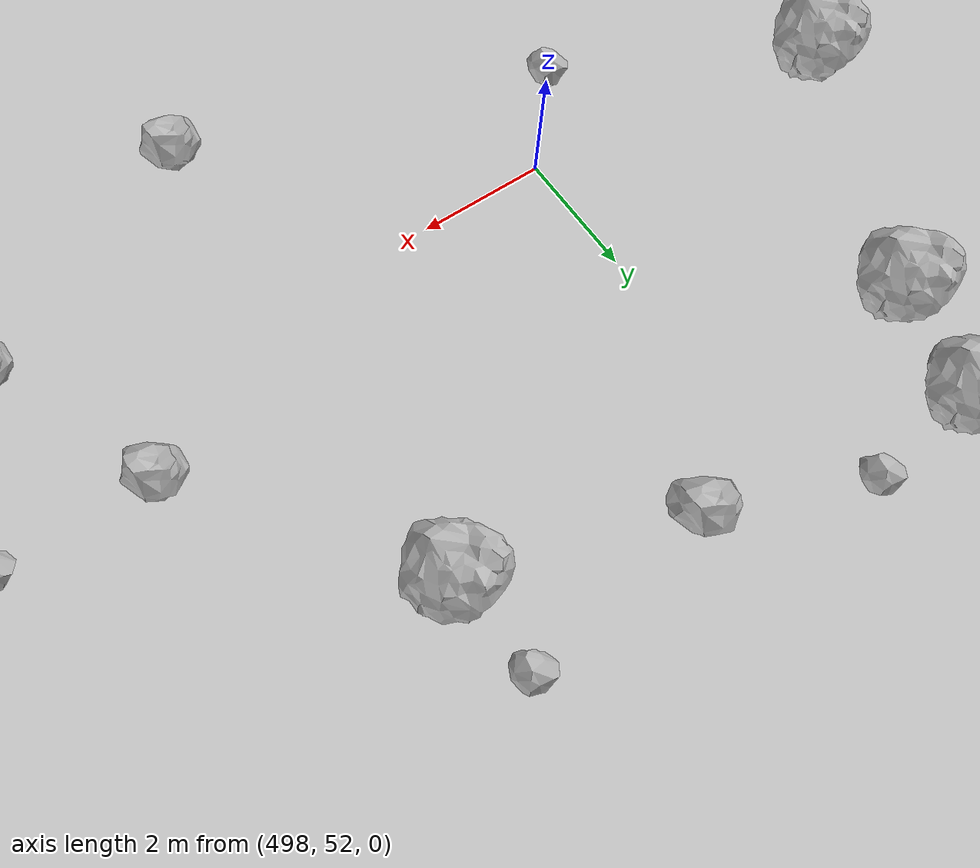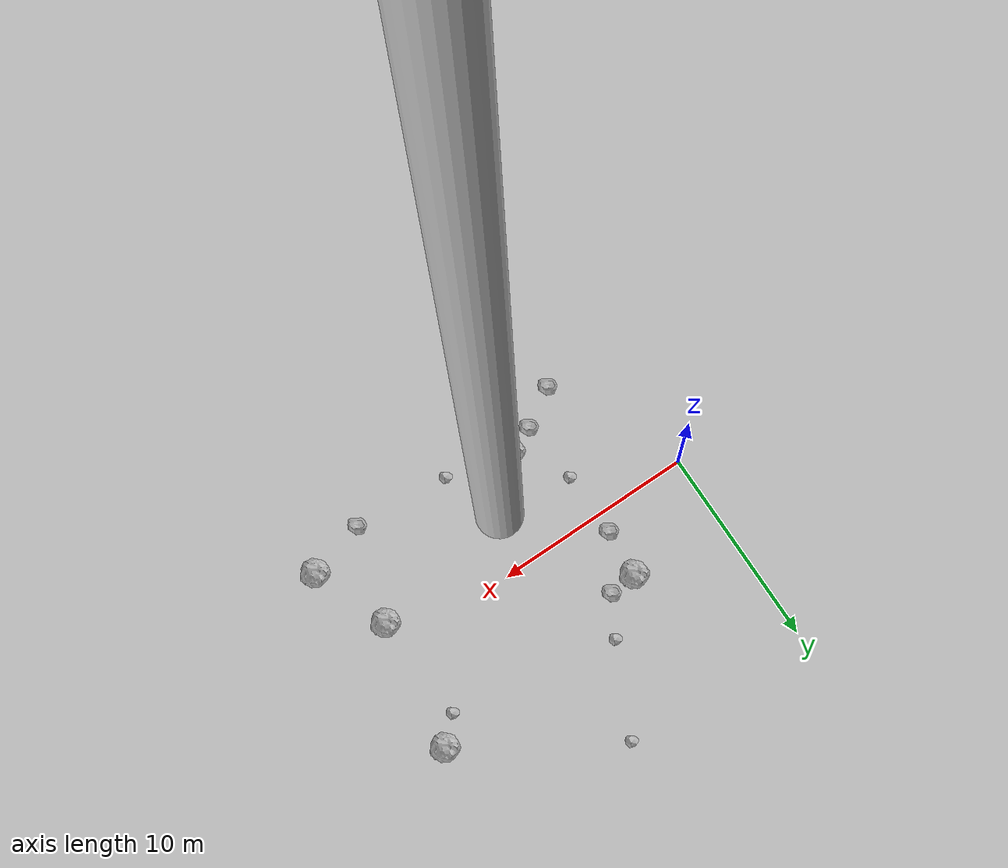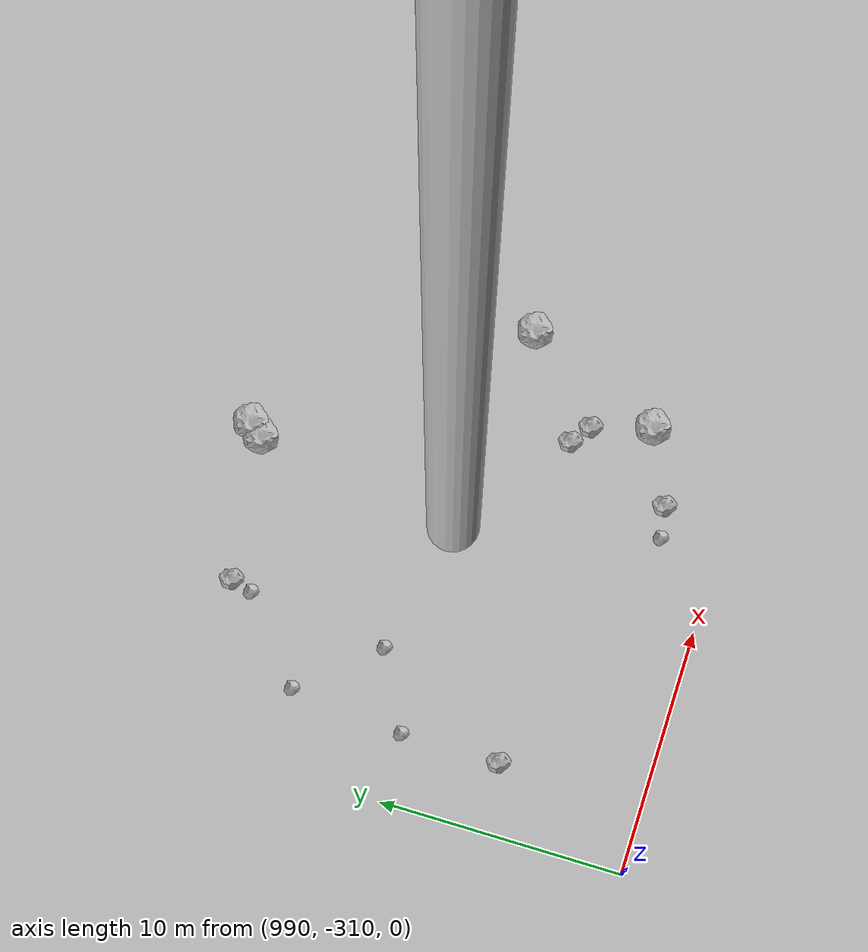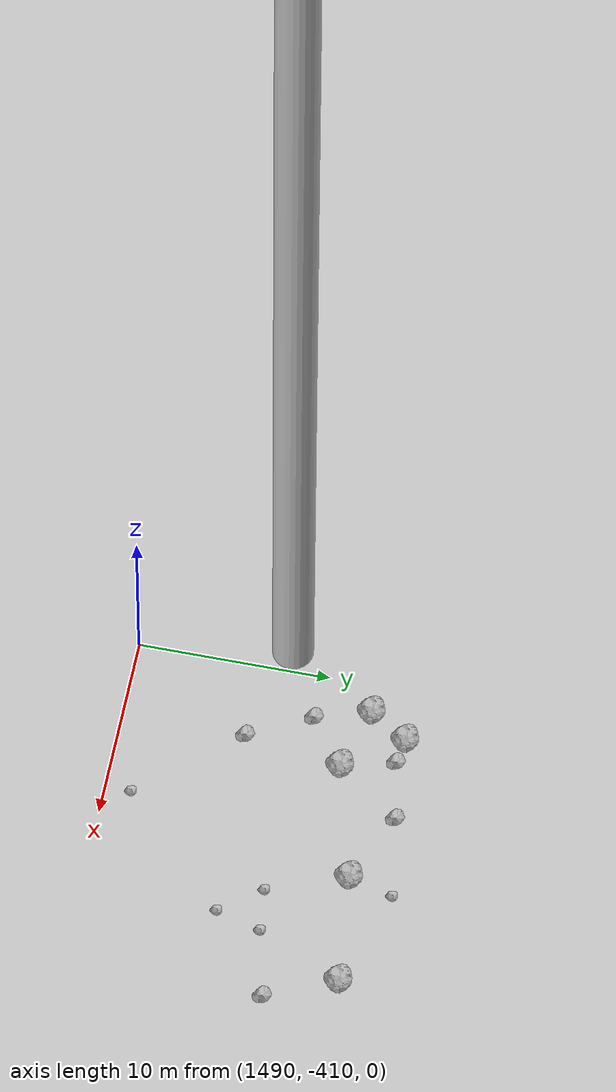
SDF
<?xml version="1.0" ?>
<sdf version="1.6">
  <world name="default">

    <include>
      <uri>model://custom_ground</uri>
    </include>

    <include>
      <uri>model://sun</uri>
    </include>

    <spherical_coordinates>
      <surface_model>EARTH_WGS84</surface_model>
      <latitude_deg>38.161479</latitude_deg>
      <longitude_deg>-122.454630</longitude_deg>
      <elevation>488.0</elevation>
      <heading_deg>90</heading_deg>
    </spherical_coordinates>

    <model name="rock1_0_0">
      <include>
        <uri>model://rock1</uri>
        <pose>16.11067296734991 -1.417759859321439 0.5 0 0 0</pose>
      </include>
    </model>
    <model name="rock1_0_1">
      <include>
        <uri>model://rock1</uri>
        <pose>17.573094741228065 -5.309311052729841 0.5 0 0 0</pose>
      </include>
    </model>
    <model name="rock1_0_2">
      <include>
        <uri>model://rock1</uri>
        <pose>17.084709788923377 5.132225780993899 0.5 0 0 0</pose>
      </include>
    </model>
    <model name="rock1_0_3">
      <include>
        <uri>model://rock1</uri>
        <pose>6.526445182104325 -4.951030588136822 0.5 0 0 0</pose>
      </include>
    </model>
    <model name="rock1_0_4">
      <include>
        <uri>model://rock1</uri>
        <pose>4.95490407489656 3.3361419802474845 0.5 0 0 0</pose>
      </include>
    </model>
    <model name="rock2_0_0">
      <include>
        <uri>model://rock2</uri>
        <pose>14.608103411631088 -6.104829642531417 0.3 0 0 0</pose>
      </include>
    </model>
    <model name="rock2_0_1">
      <include>
        <uri>model://rock2</uri>
        <pose>6.309081604555756 3.470677605502617 0.3 0 0 0</pose>
      </include>
    </model>
    <model name="rock2_0_2">
      <include>
        <uri>model://rock2</uri>
        <pose>5.0611662440257055 -5.446208547516999 0.3 0 0 0</pose>
      </include>
    </model>
    <model name="rock2_0_3">
      <include>
        <uri>model://rock2</uri>
        <pose>4.720879948601395 0.9329874076243811 0.3 0 0 0</pose>
      </include>
    </model>
    <model name="rock2_0_4">
      <include>
        <uri>model://rock2</uri>
        <pose>3.182519753448836 -6.606809462385199 0.3 0 0 0</pose>
      </include>
    </model>
    <model name="rock3_0_0">
      <include>
        <uri>model://rock3</uri>
        <pose>9.522169102477203 9.842071942240864 0.2 0 0 0</pose>
      </include>
    </model>
    <model name="rock3_0_1">
      <include>
        <uri>model://rock3</uri>
        <pose>15.816695114527569 3.928388204571018 0.2 0 0 0</pose>
      </include>
    </model>
    <model name="rock3_0_2">
      <include>
        <uri>model://rock3</uri>
        <pose>4.766420928119208 -2.349809745354552 0.2 0 0 0</pose>
      </include>
    </model>
    <model name="rock3_0_3">
      <include>
        <uri>model://rock3</uri>
        <pose>7.392539155644937 5.383792868687731 0.2 0 0 0</pose>
      </include>
    </model>
    <model name="rock3_0_4">
      <include>
        <uri>model://rock3</uri>
        <pose>9.73816994650263 -5.720402464593821 0.2 0 0 0</pose>
      </include>
    </model>
    <model name="rock1_1_0">
      <include>
        <uri>model://rock1</uri>
        <pose>202.37423813776172 103.05550551148089 0.5 0 0 0</pose>
      </include>
    </model>
    <model name="rock1_1_1">
      <include>
        <uri>model://rock1</uri>
        <pose>202.8139282576461 98.11651509972569 0.5 0 0 0</pose>
      </include>
    </model>
    <model name="rock1_1_2">
      <include>
        <uri>model://rock1</uri>
        <pose>202.02428884600903 101.14777040268251 0.5 0 0 0</pose>
      </include>
    </model>
    <model name="rock1_1_3">
      <include>
        <uri>model://rock1</uri>
        <pose>196.45945049912171 99.10113379794333 0.5 0 0 0</pose>
      </include>
    </model>
    <model name="rock1_1_4">
      <include>
        <uri>model://rock1</uri>
        <pose>191.51707272965308 100.37573862846283 0.5 0 0 0</pose>
      </include>
    </model>
    <model name="rock2_1_0">
      <include>
        <uri>model://rock2</uri>
        <pose>198.05641816168946 105.02414845667118 0.3 0 0 0</pose>
      </include>
    </model>
    <model name="rock2_1_1">
      <include>
        <uri>model://rock2</uri>
        <pose>203.08495364095077 99.14028889384109 0.3 0 0 0</pose>
      </include>
    </model>
    <model name="rock2_1_2">
      <include>
        <uri>model://rock2</uri>
        <pose>207.8812219310394 102.54781171653136 0.3 0 0 0</pose>
      </include>
    </model>
    <model name="rock2_1_3">
      <include>
        <uri>model://rock2</uri>
        <pose>194.94390536860263 107.69989286360817 0.3 0 0 0</pose>
      </include>
    </model>
    <model name="rock2_1_4">
      <include>
        <uri>model://rock2</uri>
        <pose>208.15074642648452 94.36750961421751 0.3 0 0 0</pose>
      </include>
    </model>
    <model name="rock3_1_0">
      <include>
        <uri>model://rock3</uri>
        <pose>204.58931865379935 101.5510346486528 0.2 0 0 0</pose>
      </include>
    </model>
    <model name="rock3_1_1">
      <include>
        <uri>model://rock3</uri>
        <pose>204.9775194856429 93.74711645949701 0.2 0 0 0</pose>
      </include>
    </model>
    <model name="rock3_1_2">
      <include>
        <uri>model://rock3</uri>
        <pose>196.90558078122464 99.03159417934651 0.2 0 0 0</pose>
      </include>
    </model>
    <model name="rock3_1_3">
      <include>
        <uri>model://rock3</uri>
        <pose>201.42730262775476 95.36322084439111 0.2 0 0 0</pose>
      </include>
    </model>
    <model name="rock3_1_4">
      <include>
        <uri>model://rock3</uri>
        <pose>192.0619908308738 103.08615246764302 0.2 0 0 0</pose>
      </include>
    </model>
    <model name="rock1_2_0">
      <include>
        <uri>model://rock1</uri>
        <pose>495.00246663564127 56.65416492325478 0.5 0 0 0</pose>
      </include>
    </model>
    <model name="rock1_2_1">
      <include>
        <uri>model://rock1</uri>
        <pose>495.39148041301667 58.47335849433171 0.5 0 0 0</pose>
      </include>
    </model>
    <model name="rock1_2_2">
      <include>
        <uri>model://rock1</uri>
        <pose>502.7346451520061 56.72723952070617 0.5 0 0 0</pose>
      </include>
    </model>
    <model name="rock1_2_3">
      <include>
        <uri>model://rock1</uri>
        <pose>493.17782201393413 52.664660892771366 0.5 0 0 0</pose>
      </include>
    </model>
    <model name="rock1_2_4">
      <include>
        <uri>model://rock1</uri>
        <pose>500.41344658548957 42.335069893398455 0.5 0 0 0</pose>
      </include>
    </model>
    <model name="rock2_2_0">
      <include>
        <uri>model://rock2</uri>
        <pose>505.2326270253367 53.32777710274995 0.3 0 0 0</pose>
      </include>
    </model>
    <model name="rock2_2_1">
      <include>
        <uri>model://rock2</uri>
        <pose>502.4790055039028 48.706849764648425 0.3 0 0 0</pose>
      </include>
    </model>
    <model name="rock2_2_2">
      <include>
        <uri>model://rock2</uri>
        <pose>499.4257185708328 57.78091813554313 0.3 0 0 0</pose>
      </include>
    </model>
    <model name="rock2_2_3">
      <include>
        <uri>model://rock2</uri>
        <pose>506.4937283918982 50.57856133537959 0.3 0 0 0</pose>
      </include>
    </model>
    <model name="rock2_2_4">
      <include>
        <uri>model://rock2</uri>
        <pose>497.2353359826058 43.67341748321038 0.3 0 0 0</pose>
      </include>
    </model>
    <model name="rock3_2_0">
      <include>
        <uri>model://rock3</uri>
        <pose>507.63447696676303 53.296981828977394 0.2 0 0 0</pose>
      </include>
    </model>
    <model name="rock3_2_1">
      <include>
        <uri>model://rock3</uri>
        <pose>496.79117571804517 50.57535238431198 0.2 0 0 0</pose>
      </include>
    </model>
    <model name="rock3_2_2">
      <include>
        <uri>model://rock3</uri>
        <pose>502.5543310249435 58.280016998764495 0.2 0 0 0</pose>
      </include>
    </model>
    <model name="rock3_2_3">
      <include>
        <uri>model://rock3</uri>
        <pose>497.1170852347188 58.68586128838683 0.2 0 0 0</pose>
      </include>
    </model>
    <model name="rock3_2_4">
      <include>
        <uri>model://rock3</uri>
        <pose>490.76599029497487 52.06138423498429 0.2 0 0 0</pose>
      </include>
    </model>
    <model name="rock1_3_0">
      <include>
        <uri>model://rock1</uri>
        <pose>1003.0828121095526 -290.73824906045263 0.5 0 0 0</pose>
      </include>
    </model>
    <model name="rock1_3_1">
      <include>
        <uri>model://rock1</uri>
        <pose>1009.8003374188013 -300.52885127184436 0.5 0 0 0</pose>
      </include>
    </model>
    <model name="rock1_3_2">
      <include>
        <uri>model://rock1</uri>
        <pose>1006.2657756636082 -298.0482651418569 0.5 0 0 0</pose>
      </include>
    </model>
    <model name="rock1_3_3">
      <include>
        <uri>model://rock1</uri>
        <pose>1002.6434612845791 -291.2675814405131 0.5 0 0 0</pose>
      </include>
    </model>
    <model name="rock1_3_4">
      <include>
        <uri>model://rock1</uri>
        <pose>1007.4529597488508 -306.1164641239414 0.5 0 0 0</pose>
      </include>
    </model>
    <model name="rock2_3_0">
      <include>
        <uri>model://rock2</uri>
        <pose>1004.5533434995925 -307.43416756070405 0.3 0 0 0</pose>
      </include>
    </model>
    <model name="rock2_3_1">
      <include>
        <uri>model://rock2</uri>
        <pose>996.842495562154 -291.78003672603745 0.3 0 0 0</pose>
      </include>
    </model>
    <model name="rock2_3_2">
      <include>
        <uri>model://rock2</uri>
        <pose>1005.9397496523636 -303.1208270071467 0.3 0 0 0</pose>
      </include>
    </model>
    <model name="rock2_3_3">
      <include>
        <uri>model://rock2</uri>
        <pose>992.8832656324117 -304.02934083119277 0.3 0 0 0</pose>
      </include>
    </model>
    <model name="rock2_3_4">
      <include>
        <uri>model://rock2</uri>
        <pose>1006.7316459469237 -303.72624199393744 0.3 0 0 0</pose>
      </include>
    </model>
    <model name="rock3_3_0">
      <include>
        <uri>model://rock3</uri>
        <pose>1003.2680026610917 -307.6807720502867 0.2 0 0 0</pose>
      </include>
    </model>
    <model name="rock3_3_1">
      <include>
        <uri>model://rock3</uri>
        <pose>993.3537420688994 -295.35058403884887 0.2 0 0 0</pose>
      </include>
    </model>
    <model name="rock3_3_2">
      <include>
        <uri>model://rock3</uri>
        <pose>995.9508810714182 -298.4091103968564 0.2 0 0 0</pose>
      </include>
    </model>
    <model name="rock3_3_3">
      <include>
        <uri>model://rock3</uri>
        <pose>996.5630662882126 -292.6885648308369 0.2 0 0 0</pose>
      </include>
    </model>
    <model name="rock3_3_4">
      <include>
        <uri>model://rock3</uri>
        <pose>992.8633377464786 -300.0276933812357 0.2 0 0 0</pose>
      </include>
    </model>
    <model name="rock1_4_0">
      <include>
        <uri>model://rock1</uri>
        <pose>1493.0232925365133 -395.5209015398716 0.5 0 0 0</pose>
      </include>
    </model>
    <model name="rock1_4_1">
      <include>
        <uri>model://rock1</uri>
        <pose>1491.743642067257 -397.5176894062322 0.5 0 0 0</pose>
      </include>
    </model>
    <model name="rock1_4_2">
      <include>
        <uri>model://rock1</uri>
        <pose>1507.2014460778914 -396.1911837152859 0.5 0 0 0</pose>
      </include>
    </model>
    <model name="rock1_4_3">
      <include>
        <uri>model://rock1</uri>
        <pose>1495.1230064608214 -398.49181464896077 0.5 0 0 0</pose>
      </include>
    </model>
    <model name="rock1_4_4">
      <include>
        <uri>model://rock1</uri>
        <pose>1501.3304850282739 -396.80831175353137 0.5 0 0 0</pose>
      </include>
    </model>
    <model name="rock2_4_0">
      <include>
        <uri>model://rock2</uri>
        <pose>1497.4773318446307 -395.1384098237412 0.3 0 0 0</pose>
      </include>
    </model>
    <model name="rock2_4_1">
      <include>
        <uri>model://rock2</uri>
        <pose>1492.5169112215453 -400.325195315531 0.3 0 0 0</pose>
      </include>
    </model>
    <model name="rock2_4_2">
      <include>
        <uri>model://rock2</uri>
        <pose>1494.2665394235364 -395.71495760899955 0.3 0 0 0</pose>
      </include>
    </model>
    <model name="rock2_4_3">
      <include>
        <uri>model://rock2</uri>
        <pose>1508.6951518761277 -399.7580317256684 0.3 0 0 0</pose>
      </include>
    </model>
    <model name="rock2_4_4">
      <include>
        <uri>model://rock2</uri>
        <pose>1494.2223614781863 -403.5697488347479 0.3 0 0 0</pose>
      </include>
    </model>
    <model name="rock3_4_0">
      <include>
        <uri>model://rock3</uri>
        <pose>1505.0661373767234 -400.643946385682 0.2 0 0 0</pose>
      </include>
    </model>
    <model name="rock3_4_1">
      <include>
        <uri>model://rock3</uri>
        <pose>1504.390938557385 -403.013389093026 0.2 0 0 0</pose>
      </include>
    </model>
    <model name="rock3_4_2">
      <include>
        <uri>model://rock3</uri>
        <pose>1502.7702097140407 -400.8802015692327 0.2 0 0 0</pose>
      </include>
    </model>
    <model name="rock3_4_3">
      <include>
        <uri>model://rock3</uri>
        <pose>1501.8585259285978 -394.4904662656138 0.2 0 0 0</pose>
      </include>
    </model>
    <model name="rock3_4_4">
      <include>
        <uri>model://rock3</uri>
        <pose>1498.5543152957403 -408.6662741545277 0.2 0 0 0</pose>
      </include>
    </model>

    <model name="cylinder_1">
      <static>true</static>
      <link name="link">
        <visual name="visual">
          <geometry>
            <cylinder>
              <radius>1</radius>
              <length>500</length>
            </cylinder>
          </geometry>
        </visual>
      </link>
      <pose>10 0 270 0 0 0</pose>
    </model>

    <model name="cylinder_2">
      <static>true</static>
      <link name="link">
        <visual name="visual">
          <geometry>
            <cylinder>
              <radius>1</radius>
              <length>500</length>
            </cylinder>
          </geometry>
        </visual>
      </link>
      <pose>200 100 270 0 0 0</pose>
    </model>

    <model name="cylinder_3">
      <static>true</static>
      <link name="link">
        <visual name="visual">
          <geometry>
            <cylinder>
              <radius>1</radius>
              <length>500</length>
            </cylinder>
          </geometry>
        </visual>
      </link>
      <pose>500 50 270 0 0 0</pose>
    </model>

    <model name="cylinder_4">
      <static>true</static>
      <link name="link">
        <visual name="visual">
          <geometry>
            <cylinder>
              <radius>1</radius>
              <length>500</length>
            </cylinder>
          </geometry>
        </visual>
      </link>
      <pose>1000 -300 270 0 0 0</pose>
    </model>

    <model name="cylinder_5">
      <static>true</static>
      <link name="link">
        <visual name="visual">
          <geometry>
            <cylinder>
              <radius>1</radius>
              <length>500</length>
            </cylinder>
          </geometry>
        </visual>
      </link>
      <pose>1500 -400 270 0 0 0</pose>
    </model>

  </world>
</sdf>

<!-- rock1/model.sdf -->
<sdf version="1.6">
  <model name="rock1">
    <static>true</static> <!-- Set to true if the model should not move -->
    <pose>0 0 0 0 0 0</pose>

    <!--z offset is 0.5 for full scale-->

    <link name="link">
      <collision name="rock1_collision">
        <geometry>
          <mesh>
            <uri>model://meshes/rock1.dae</uri>
          </mesh>
        </geometry>
      </collision>
      <visual name="rock1_visual">
        <geometry>
          <mesh>
            <uri>model://meshes/rock1.dae</uri>
          </mesh>
        </geometry>
        <material>
          <script>
            <uri>model://materials/scripts/sand_pebbles.material</uri>
            <name>custom_ground/Image</name>
          </script>
        </material>
      </visual>
    </link>
  </model>
</sdf>

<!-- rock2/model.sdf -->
<sdf version="1.6">
  <model name="rock2">
    <static>true</static> <!-- Set to true if the model should not move -->
    <pose>0 0 0 0 0 0</pose>

    <!--z offset is 0.3 for full scale-->

    <link name="link">
      <collision name="rock2_collision">
        <geometry>
          <mesh>
            <uri>model://meshes/rock2.dae</uri>
          </mesh>
        </geometry>
      </collision>
      <visual name="rock2_visual">
        <geometry>
          <mesh>
            <uri>model://meshes/rock2.dae</uri>
          </mesh>
        </geometry>
        <material>
          <script>
            <uri>model://materials/scripts/sand_pebbles.material</uri>
            <name>custom_ground/Image</name>
          </script>
        </material>
      </visual>
    </link>
  </model>
</sdf>

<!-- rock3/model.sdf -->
<sdf version="1.6">
  <model name="rock3">
    <static>true</static> <!-- Set to true if the model should not move -->
    <pose>0 0 0 0 0 0</pose>

    <!--z offset is 0.2 for full scale-->

    <link name="link">
      <collision name="rock3_collision">
        <geometry>
          <mesh>
            <uri>model://meshes/rock3.dae</uri>
          </mesh>
        </geometry>
      </collision>
      <visual name="rock3_visual">
        <geometry>
          <mesh>
            <uri>model://meshes/rock3.dae</uri>
          </mesh>
        </geometry>
        <material>
          <script>
            <uri>model://materials/scripts/sand_pebbles.material</uri>
            <name>custom_ground/Image</name>
          </script>
        </material>
      </visual>
    </link>
  </model>
</sdf>

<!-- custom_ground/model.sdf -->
<sdf version="1.6">
  <model name="custom_ground">
    <static>true</static> <!-- Ground is static and immovable -->
    <link name="ground_link">
      <pose>240 0 0 0 0 0</pose> <!-- Position and orientation relative to the world -->
      <!-- Visual Representation -->
      <visual name="ground_visual">
        <geometry>
          <plane>
            <normal>0 0 1</normal> <!-- Upward facing plane -->
            <size>500 500</size> <!-- Size of the plane -->
          </plane>
        </geometry>
        <material>
          <script>
            <uri>model://materials/scripts/sand_pebbles.material</uri>
            <name>custom_ground/Image</name>
          </script>
        </material>
      </visual>

      <!-- Collision Representation -->
      <collision name="ground_collision">
        <geometry>
          <plane>
            <normal>0 0 1</normal>
            <size>100 100</size>
          </plane>
        </geometry>
      </collision>

    </link>
  </model>
</sdf>
